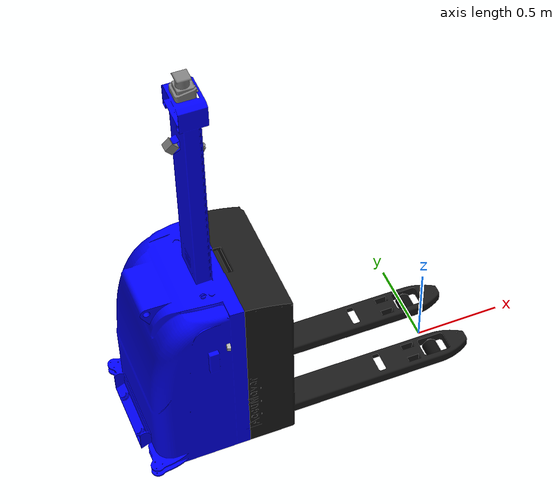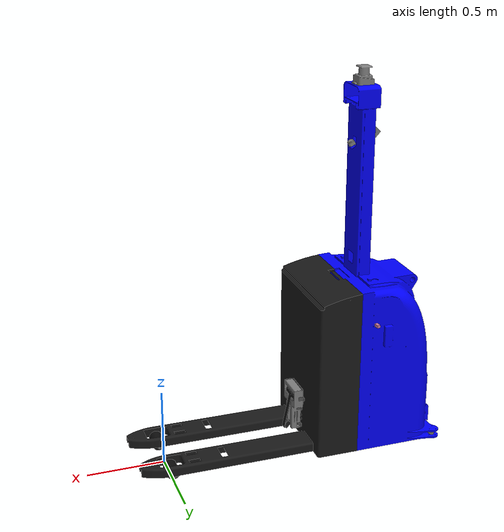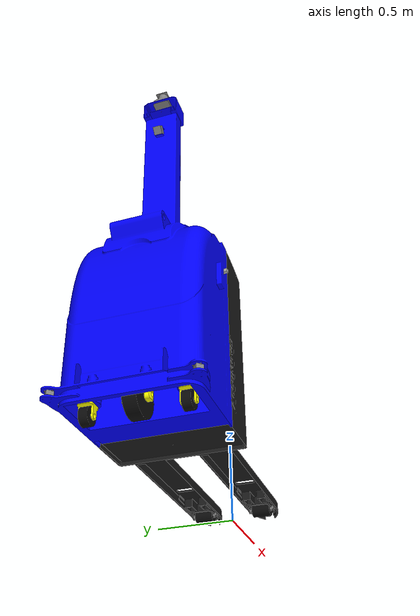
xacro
<?xml version="1.0"?>
<robot xmlns:xacro="http://www.ros.org/wiki/xacro" name="bopt_robot">

    <xacro:arg name="robot_name" default=""/>
    <xacro:arg name="robot_namespace" default=""/>
    <xacro:arg name="lidar_frame" default="top3dl_link"/>
    <xacro:arg name="robot_param_node" default="robot_state_publisher"/>

    <xacro:property name="robot_name" value="$(arg robot_name)"/>
    <xacro:include filename="materials.xacro"/>
    <xacro:include filename="ros2_control.xacro"/>
    <xacro:include filename="gazebo.xacro"/>

    <!-- ================================================================
         BASE LINKS
         ================================================================ -->

    <link name="base_footprint"/>

    <!-- Base chassis link -->
    <link name="base_link">
        <visual>
            <origin xyz="0 0 0" rpy="0 0 0"/>
            <geometry>
                <mesh filename="file:///home/jkw/bopt_ws/install/bopt_description/share/bopt_description/meshes/visual/Base.stl"/>
            </geometry>
            <material name="blue"/>
        </visual>
        <collision>
            <origin xyz="0.057 0 0.874" rpy="0 0 0"/>
            <geometry>
                <box size="0.583 0.821 2.315"/>
            </geometry>
        </collision>
        <inertial>
            <origin xyz="0 0 -0.2500" rpy="0 0 0"/>
            <mass value="200.0"/>
            <inertia ixx="3.46" ixy="0.0" ixz="0.0"
                     iyy="7.73" iyz="0.0"
                     izz="9.06"/>
        </inertial>
    </link>

    <joint name="base_footprint_joint" type="fixed">
        <parent link="base_footprint"/>
        <child link="base_link"/>
        <origin xyz="-1.542 0 0.337" rpy="0 0 0"/>
    </joint>

    <!-- ================================================================
         DRIVE WHEEL ASSEMBLY (Steering + Drive)
         ================================================================ -->

    <!-- Drive wheel steering assembly -->
    <link name="drive_wheel_Ass">
        <visual>
            <origin xyz="0 0 0" rpy="0 0 0"/>
            <geometry>
                <mesh filename="file:///home/jkw/bopt_ws/install/bopt_description/share/bopt_description/meshes/visual/drive_wheel_ass.stl"/>
            </geometry>
            <material name="yellow"/>
        </visual>
        <collision>
            <origin xyz="0 0 0" rpy="0 0 0"/>
            <geometry>
                <mesh filename="file:///home/jkw/bopt_ws/install/bopt_description/share/bopt_description/meshes/visual/drive_wheel_ass.stl"/>
            </geometry>
        </collision>
        <inertial>
            <origin xyz="0 0 0" rpy="0 0 0"/>
            <mass value="5.0"/>
            <inertia ixx="0.01" ixy="0.0" ixz="0.0"
                     iyy="0.01" iyz="0.0"
                     izz="0.01"/>
        </inertial>
    </link>

    <joint name="drive_wheel_Ass_joint" type="revolute">
        <parent link="base_link"/>
        <child link="drive_wheel_Ass"/>
        <origin xyz="0 0 -0.0010" rpy="0 0 0"/>
        <axis xyz="0 0 1"/>
        <limit lower="-3.14159" upper="3.14159" effort="1000" velocity="2"/>
        <dynamics damping="6" friction="0.1"/>
    </joint>

    <!--imu link -->
    <link name="imu_link">
        <inertial>
            <origin xyz="0.0 0.0 0.0"/>
            <mass value="0.01"/>
            <inertia ixx="0.02" iyy="0.02" izz="0.02"
                    ixy="0" ixz="0" iyz="0"/>
        </inertial>
    </link>

    <joint name="imu_joint" type="fixed">
        <parent link="base_link"/>
        <child link="imu_link"/>
        <origin xyz="0 0 0"/>
    </joint>

    <!-- Drive wheel -->
    <link name="drive_wheel">
        <visual>
            <origin xyz="0 0 0" rpy="0 0 0"/>
            <geometry>
                <mesh filename="file:///home/jkw/bopt_ws/install/bopt_description/share/bopt_description/meshes/visual/drive_wheel.stl"/>
            </geometry>
            <material name="rubber_black"/>
        </visual>
        <collision>
            <origin xyz="0 0 0" rpy="1.5708 0 0"/>
            <geometry>
                <cylinder radius="0.115" length="0.074"/>
            </geometry>
            <surface>
                <friction>
                    <ode>
                        <mu>5.0</mu>
                        <mu2>5.0</mu2>
                    </ode>
                </friction>
            </surface>
        </collision>
        <inertial>
            <origin xyz="0 0 0" rpy="0 0 0"/>
            <mass value="10.0"/>
            <inertia ixx="0.02" ixy="0.0" ixz="0.0"
                     iyy="0.02" iyz="0.0"
                     izz="0.02"/>
        </inertial>
    </link>

    <joint name="drive_wheel_joint" type="continuous">
        <parent link="drive_wheel_Ass"/>
        <child link="drive_wheel"/>
        <origin xyz="0 0 -0.21916" rpy="0 0 0"/>
        <axis xyz="0 1 0"/>
        <dynamics damping="10" friction="6"/>
    </joint>

    <!-- ================================================================
         CASTER WHEEL ASSEMBLIES
         ================================================================ -->

    <!-- Caster assembly - right -->
    <link name="caster_wheel_ass_right">
        <visual>
            <origin xyz="0 0 0" rpy="0 0 0"/>
            <geometry>
                <mesh filename="file:///home/jkw/bopt_ws/install/bopt_description/share/bopt_description/meshes/visual/caster_wheel_ass.stl"/>
            </geometry>
            <material name="yellow"/>
        </visual>
        <collision>
            <origin xyz="0 0 0" rpy="0 0 0"/>
            <geometry>
                <mesh filename="file:///home/jkw/bopt_ws/install/bopt_description/share/bopt_description/meshes/visual/caster_wheel_ass.stl"/>
            </geometry>
        </collision>
        <inertial>
            <origin xyz="0 0 0" rpy="0 0 0"/>
            <mass value="2.0"/>
            <inertia ixx="0.02" ixy="0.0" ixz="0.0"
                     iyy="0.02" iyz="0.0"
                     izz="0.02"/>
        </inertial>
    </link>

    <joint name="caster_wheel_ass_joint_right" type="continuous">
        <parent link="base_link"/>
        <child link="caster_wheel_ass_right"/>
        <origin xyz="0 -0.26066 -0.205" rpy="0 0 0"/>
        <axis xyz="0 0 1"/>
        <dynamics damping="1" friction="0.01"/>
    </joint>

    <!-- Caster assembly - left -->
    <link name="caster_wheel_ass_left">
        <visual>
            <origin xyz="0 0 0" rpy="0 0 0"/>
            <geometry>
                <mesh filename="file:///home/jkw/bopt_ws/install/bopt_description/share/bopt_description/meshes/visual/caster_wheel_ass.stl"/>
            </geometry>
            <material name="yellow"/>
        </visual>
        <collision>
            <origin xyz="0 0 0" rpy="0 0 0"/>
            <geometry>
                <mesh filename="file:///home/jkw/bopt_ws/install/bopt_description/share/bopt_description/meshes/visual/caster_wheel_ass.stl"/>
            </geometry>
        </collision>
        <inertial>
            <origin xyz="0 0 0" rpy="0 0 0"/>
            <mass value="2.0"/>
            <inertia ixx="0.02" ixy="0.0" ixz="0.0"
                     iyy="0.02" iyz="0.0"
                     izz="0.02"/>
        </inertial>
    </link>

    <joint name="caster_wheel_ass_joint_left" type="continuous">
        <parent link="base_link"/>
        <child link="caster_wheel_ass_left"/>
        <origin xyz="0 0.26066 -0.205" rpy="0 0 0"/>
        <axis xyz="0 0 1"/>
        <dynamics damping="1" friction="0.01"/>
    </joint>

    <!-- Caster wheel - right -->
    <link name="caster_wheel_right">
        <visual>
            <origin xyz="0 0 0" rpy="0 0 0"/>
            <geometry>
                <mesh filename="file:///home/jkw/bopt_ws/install/bopt_description/share/bopt_description/meshes/visual/casster_wheel.stl"/>
            </geometry>
            <material name="rubber_black"/>
        </visual>
        <collision>
            <origin xyz="0 0 0" rpy="1.5708 0 0"/>
            <geometry>
                <cylinder radius="0.050" length="0.055"/>
            </geometry>
        </collision>
        <inertial>
            <origin xyz="0 0 0" rpy="0 0 0"/>
            <mass value="1.8"/>
            <inertia ixx="0.02" ixy="0.0" ixz="0.0"
                     iyy="0.02" iyz="0.0"
                     izz="0.02"/>
        </inertial>
    </link>

    <joint name="caster_wheel_joint_right" type="continuous">
        <parent link="caster_wheel_ass_right"/>
        <child link="caster_wheel_right"/>
        <origin xyz="0 0 -0.078" rpy="0 0 0"/>
        <axis xyz="0 1 0"/>
        <dynamics damping="10" friction="6"/>
    </joint>

    <!-- Caster wheel - left -->
    <link name="caster_wheel_left">
        <visual>
            <origin xyz="0 0 0" rpy="0 0 0"/>
            <geometry>
                <mesh filename="file:///home/jkw/bopt_ws/install/bopt_description/share/bopt_description/meshes/visual/casster_wheel.stl"/>
            </geometry>
            <material name="rubber_black"/>
        </visual>
        <collision>
            <origin xyz="0 0 0" rpy="1.5708 0 0"/>
            <geometry>
                <cylinder radius="0.050" length="0.055"/>
            </geometry>
        </collision>
        <inertial>
            <origin xyz="0 0 0" rpy="0 0 0"/>
            <mass value="1.8"/>
            <inertia ixx="0.02" ixy="0.0" ixz="0.0"
                     iyy="0.02" iyz="0.0"
                     izz="0.02"/>
        </inertial>
    </link>

    <joint name="caster_wheel_joint_left" type="continuous">
        <parent link="caster_wheel_ass_left"/>
        <child link="caster_wheel_left"/>
        <origin xyz="0 0 -0.078" rpy="0 0 0"/>
        <axis xyz="0 1 0"/>
        <dynamics damping="10" friction="6"/>
    </joint>

    <!-- ================================================================
         BOTTOM LIDAR SENSORS (rear corners)
         ================================================================ -->

    <!-- Bottom lidar - left rear -->
    <link name="LLt">
        <visual>
            <origin xyz="0 0 -0.009" rpy="0 0 2.356"/>
            <geometry>
                <mesh filename="file:///home/jkw/bopt_ws/install/bopt_description/share/bopt_description/meshes/visual/lidar19.stl"/>
            </geometry>
            <material name="gray"/>
        </visual>
        <collision>
            <origin xyz="0 0 0" rpy="0 0 0"/>
            <geometry>
                <box size="0.05 0.05 0.05"/>
            </geometry>
        </collision>
        <inertial>
            <origin xyz="0 0 0" rpy="0 0 0"/>
            <mass value="0.2"/>
            <inertia ixx="0.01" ixy="0.0" ixz="0.0"
                     iyy="0.01" iyz="0.0"
                     izz="0.01"/>
        </inertial>
    </link>

    <joint name="LLt_joint" type="fixed">
        <parent link="base_link"/>
        <child link="LLt"/>
        <origin xyz="-0.1854 0.3704 -0.230" rpy="3.14 0 0"/>
    </joint>

    <!-- Bottom lidar - right rear -->
    <link name="LRt">
        <visual>
            <origin xyz="0 0 -0.009" rpy="0 0 0.784"/>
            <geometry>
                <mesh filename="file:///home/jkw/bopt_ws/install/bopt_description/share/bopt_description/meshes/visual/lidar19.stl"/>
            </geometry>
            <material name="gray"/>
        </visual>
        <collision>
            <origin xyz="0 0 0" rpy="0 0 0"/>
            <geometry>
                <box size="0.05 0.05 0.05"/>
            </geometry>
        </collision>
        <inertial>
            <origin xyz="0 0 0" rpy="0 0 0"/>
            <mass value="0.2"/>
            <inertia ixx="0.01" ixy="0.0" ixz="0.0"
                     iyy="0.01" iyz="0.0"
                     izz="0.01"/>
        </inertial>
    </link>

    <joint name="LRt_joint" type="fixed">
        <parent link="base_link"/>
        <child link="LRt"/>
        <origin xyz="-0.1854 -0.3704 -0.230" rpy="3.14 0 0"/>
    </joint>

    <!-- ================================================================
         TOP 2D LIDAR SENSORS
         ================================================================ -->

    <!-- Top 2D lidar - back -->

    <!--Depth camera instead of back lidar -->

    <link name="depth_camera_back">

        <visual>
            <origin xyz="0 0 0" rpy="0 0 0"/>
            <geometry>
                <box size="0.05 0.05 0.05"/>
            </geometry>
            <material name="gray"/>
        </visual>

        <collision>
            <origin xyz="0 0 0" rpy="0 0 0"/>
            <geometry>
                <box size="0.01 0.01 0.01"/>
            </geometry>
        </collision>

        <inertial>
            <origin xyz="0 0 0" rpy="0 0 0"/>
            <mass value="0.1"/>
            <inertia
                ixx="0.01"
                ixy="0.0"
                ixz="0.0"
                iyy="0.01"
                iyz="0.0"
                izz="0.01"/>
        </inertial>

    </link>

    <joint name="depth_camera_joint_back" type="fixed">

        <parent link="base_link"/>
        <child link="depth_camera_back"/>

        <origin
            xyz="0.145 -0.0063 1.730"
            rpy="0 0.724835238353245 3.141592653589793"/>

    </joint>

    <link name="depth_camera_back_optical"/>

    <joint name="depth_camera_optical_joint_back" type="fixed">

        <parent link="depth_camera_back"/>
        <child link="depth_camera_back_optical"/>

        <origin
            xyz="0 0 0"
            rpy="-1.5708 0 -1.5708"/>

    </joint>

    <!-- Top 2D lidar - front -->
    <link name="toplidar_front">
        <visual>
            <origin xyz="0 0 -0.003" rpy="0 0 -1.5708"/>
            <geometry>
                <mesh filename="file:///home/jkw/bopt_ws/install/bopt_description/share/bopt_description/meshes/visual/lidar19.stl"/>
            </geometry>
            <material name="gray"/>
        </visual>
        <collision>
            <origin xyz="0 0 0" rpy="0 0 0"/>
            <geometry>
                <box size="0.05 0.05 0.05"/>
            </geometry>
        </collision>
        <inertial>
            <origin xyz="0 0 0" rpy="0 0 0"/>
            <mass value="0.2"/>
            <inertia ixx="0.01" ixy="0.0" ixz="0.0"
                     iyy="0.01" iyz="0.0"
                     izz="0.01"/>
        </inertial>
    </link>

    <joint name="toplidar_joint_front" type="fixed">
        <parent link="base_link"/>
        <child link="toplidar_front"/>
        <origin xyz="0.288 -0.0063 1.66" rpy="0 0.47 0"/>
    </joint>

    <!-- ================================================================
         TOP 3D LIDAR
         ================================================================ -->

    <link name="top3dl_link">
        <visual>
            <origin xyz="0 0 0" rpy="0 0 0"/>
            <geometry>
                <mesh filename="file:///home/jkw/bopt_ws/install/bopt_description/share/bopt_description/meshes/visual/3Dlidar.stl"/>
            </geometry>
            <material name="gray"/>
        </visual>
        <collision>
            <origin xyz="0 0 0" rpy="0 0 0"/>
            <geometry>
                <box size="0.1 0.1 0.1"/>
            </geometry>
        </collision>
        <inertial>
            <origin xyz="0 0 0" rpy="0 0 0"/>
            <mass value="0.5"/>
            <inertia ixx="0.01" ixy="0.0" ixz="0.0"
                     iyy="0.01" iyz="0.0"
                     izz="0.01"/>
        </inertial>
    </link>

    <joint name="top3dl_joint" type="fixed">
        <parent link="base_link"/>
        <child link="top3dl_link"/>
        <origin xyz="0.2356 0.00 2.0731" rpy="0 0 0"/>
    </joint>

    <!--front safety lidar-->

    <link name="front_lidar_frame_left">
        <visual>
            <origin xyz="0 0 0" rpy="0 0 -1.5708"/>
            <geometry>
                <mesh filename="file:///home/jkw/bopt_ws/install/bopt_description/share/bopt_description/meshes/visual/lidar19.stl"/>
            </geometry>
            <material name="gray"/>
        </visual>
        <collision>
            <origin xyz="0 0 0" rpy="0 0 0"/>
            <geometry>
                <box size="0.05 0.05 0.05"/>
            </geometry>
        </collision>
        <inertial>
            <origin xyz="0 0 0" rpy="0 0 0"/>
            <mass value="0.5"/>
            <inertia ixx="0.001" ixy="0.0" ixz="0.0" iyy="0.001" iyz="0.0" izz="0.001"/>
        </inertial>
    </link>

    <joint name="front_lidar_frame_left_joint" type="fixed">
        <parent link="front_lift_link"/>
        <child link="front_lidar_frame_left"/>
        <origin xyz="1.233 0.180 0.025" rpy="3.14 0 0"/>
    </joint>

    <link name="front_lidar_frame_right">
        <visual>
            <origin xyz="0 0 0" rpy="0 0 -1.5708"/>
            <geometry>
                <mesh filename="file:///home/jkw/bopt_ws/install/bopt_description/share/bopt_description/meshes/visual/lidar19.stl"/>
            </geometry>
            <material name="gray"/>
        </visual>
        <collision>
            <origin xyz="0 0 0" rpy="0 0 0"/>
            <geometry>
                <box size="0.05 0.05 0.05"/>
            </geometry>
        </collision>
        <inertial>
            <origin xyz="0 0 0" rpy="0 0 0"/>
            <mass value="0.5"/>
            <inertia ixx="0.001" ixy="0.0" ixz="0.0" iyy="0.001" iyz="0.0" izz="0.001"/>
        </inertial>
    </link>

    <joint name="front_lidar_frame_right_joint" type="fixed">
        <parent link="front_lift_link"/>
        <child link="front_lidar_frame_right"/>
        <origin xyz="1.233 -0.190 0.025" rpy="3.14 0 0"/>
    </joint>

    <!-- ================================================================
         FRONT LIFT MECHANISM
         ================================================================ -->

    <link name="front_lift_link">
        <visual>
            <origin xyz="0 0 0" rpy="0 0 0"/>
            <geometry>
                <mesh filename="file:///home/jkw/bopt_ws/install/bopt_description/share/bopt_description/meshes/visual/front.stl"/>
            </geometry>
            <material name="black"/>
        </visual>
        <collision>
            <origin xyz="0 0 0" rpy="0 0 0"/>
            <geometry>
                <mesh filename="file:///home/jkw/bopt_ws/install/bopt_description/share/bopt_description/meshes/visual/front.stl"/>
            </geometry>
        </collision>
        <inertial>
            <origin xyz="0.177 0 0" rpy="0 0 0"/>
            <mass value="125"/>
            <inertia ixx="1.0" ixy="0.0" ixz="0.0"
                     iyy="2.0" iyz="0.0"
                     izz="2.0"/>
        </inertial>
    </link>

    <joint name="front_lift_joint" type="prismatic">
        <parent link="base_link"/>
        <child link="front_lift_link"/>
        <origin xyz="0.477 0 -0.265" rpy="0 0 0"/>
        <axis xyz="0 0 1"/>
        <limit lower="0" upper="0.095" effort="30000" velocity="0.05"/>
        <dynamics damping="125" friction="15"/>
    </joint>

    <!-- ================================================================
         FRONT WHEELS
         ================================================================ -->

    <!-- Front wheel shaft - left -->
    <link name="front_wheel_shaft_left">
        <visual>
            <origin xyz="0 0 0" rpy="1.5708 0 0"/>
            <geometry>
                <mesh filename="file:///home/jkw/bopt_ws/install/bopt_description/share/bopt_description/meshes/visual/front_wheel_shaft.stl"/>
            </geometry>
            <material name="gray"/>
        </visual>
        <collision>
            <origin xyz="0 0 0" rpy="1.5708 0 0"/>
            <geometry>
                <mesh filename="file:///home/jkw/bopt_ws/install/bopt_description/share/bopt_description/meshes/visual/front_wheel_shaft.stl"/>
            </geometry>
        </collision>
        <inertial>
            <origin xyz="0.148 0 0" rpy="0 0 0"/>
            <mass value="1"/>
            <inertia ixx="0.01" ixy="0.0" ixz="0.0"
                     iyy="0.01" iyz="0.0"
                     izz="0.01"/>
        </inertial>
    </link>

    <joint name="front_wheel_shaft_left_joint" type="revolute">
        <parent link="front_lift_link"/>
        <child link="front_wheel_shaft_left"/>

        <origin xyz="0.9190 0.2485 0.0196"
            rpy="0 0.259 0"/>

        <axis xyz="0 1 0"/>

        <limit lower="0"
            upper="0.785"
            effort="500000"
            velocity="1"/>

        <dynamics damping="125.0"
                friction="0.8"/>

        <mimic joint="front_lift_joint"
               multiplier="7.725"
               offset="0"/>
    </joint>

    <!-- Front wheel shaft - right -->
    <link name="front_wheel_shaft_right">
        <visual>
            <origin xyz="0 0 0" rpy="1.5708 0 0"/>
            <geometry>
                <mesh filename="file:///home/jkw/bopt_ws/install/bopt_description/share/bopt_description/meshes/visual/front_wheel_shaft.stl"/>
            </geometry>
            <material name="gray"/>
        </visual>
        <collision>
            <origin xyz="0 0 0" rpy="1.5708 0 0"/>
            <geometry>
                <mesh filename="file:///home/jkw/bopt_ws/install/bopt_description/share/bopt_description/meshes/visual/front_wheel_shaft.stl"/>
            </geometry>
        </collision>
        <inertial>
            <origin xyz="0.148 0 0" rpy="0 0 0"/>
            <mass value="1"/>
            <inertia ixx="0.01" ixy="0.0" ixz="0.0"
                     iyy="0.01" iyz="0.0"
                     izz="0.01"/>
        </inertial>
    </link>

    <joint name="front_wheel_shaft_right_joint" type="revolute">
        <parent link="front_lift_link"/>
        <child link="front_wheel_shaft_right"/>

        <origin xyz="0.9190 -0.1205 0.0196"
            rpy="0 0.259 0"/>

        <axis xyz="0 1 0"/>

        <limit lower="0"
            upper="0.785"
            effort="500000"
            velocity="1"/>

        <dynamics damping="125.0"
                friction="0.8"/>

        <mimic joint="front_lift_joint"
            multiplier="7.725"
            offset="0"/>
    </joint>
    <!-- Front wheel - right -->
    <link name="front_wheel_right">
        <visual>
            <origin xyz="0 0 0" rpy="0 0 0"/>
            <geometry>
                <mesh filename="file:///home/jkw/bopt_ws/install/bopt_description/share/bopt_description/meshes/visual/front_wheel.stl"/>
            </geometry>
            <material name="rubber_black"/>
        </visual>
        <collision>
            <origin xyz="0 0 0" rpy="1.5708 0 0"/>
            <geometry>
                <cylinder radius="0.0425" length="0.110"/>
            </geometry>
        </collision>
        <inertial>
            <origin xyz="0 0 0" rpy="0 0 0"/>
            <mass value="5.0"/>
            <inertia ixx="0.01" ixy="0.0" ixz="0.0"
                     iyy="0.01" iyz="0.0"
                     izz="0.01"/>
        </inertial>
    </link>

    <joint name="front_wheel_right_joint" type="continuous">
        <parent link="front_wheel_shaft_right"/>
        <child link="front_wheel_right"/>
        <origin xyz="0.1488 -0.067 -0.0025435" rpy="0 -0.259 0"/>
        <axis xyz="0 1 0"/>
        <dynamics damping="10" friction="6"/>
    </joint>

    <!-- Front wheel - left -->
    <link name="front_wheel_left">
        <visual>
            <origin xyz="0 0 0" rpy="0 0 0"/>
            <geometry>
                <mesh filename="file:///home/jkw/bopt_ws/install/bopt_description/share/bopt_description/meshes/visual/front_wheel.stl"/>
            </geometry>
            <material name="rubber_black"/>
        </visual>
        <collision>
            <origin xyz="0 0 0" rpy="1.5708 0 0"/>
            <geometry>
               <cylinder radius="0.0425" length="0.110"/>
            </geometry>
        </collision>
        <inertial>
            <origin xyz="0 0 0" rpy="0 0 0"/>
            <mass value="5.0"/>
            <inertia ixx="0.01" ixy="0.0" ixz="0.0"
                     iyy="0.01" iyz="0.0"
                     izz="0.01"/>
        </inertial>
    </link>

    <joint name="front_wheel_left_joint" type="continuous">
        <parent link="front_wheel_shaft_left"/>
        <child link="front_wheel_left"/>
        <origin xyz="0.1488 -0.067 -0.0025435" rpy="0 -0.259 0"/>
        <axis xyz="0 1 0"/>
        <dynamics damping="10" friction="6"/>
    </joint>

    <!-- ultrasonic sensor for base left and right -->
    <link name="ultrasonic_link_left">
        <visual>
            <geometry>
                <box size="0.02 0.05 0.02"/>
            </geometry>
        </visual>
        <collision>
            <geometry>
                <box size="0.02 0.05 0.02"/>
            </geometry>
        </collision>
    </link>

    <joint name="ultrasonic_joint_left" type="fixed">
        <parent link="base_link"/>
        <child link="ultrasonic_link_left"/>
        <origin xyz="0.250 0.3704 0.600" rpy="0 0.0872665 0.1872665"/>
    </joint>

    <link name="ultrasonic_link_right">
        <visual>
            <geometry>
                <box size="0.02 0.05 0.02"/>
            </geometry>
        </visual>
        <collision>
            <geometry>
                <box size="0.02 0.05 0.02"/>
            </geometry>
        </collision>
    </link>

    <joint name="ultrasonic_joint_right" type="fixed">
        <parent link="base_link"/>
        <child link="ultrasonic_link_right"/>
        <origin xyz="0.250 -0.3704 0.600" rpy="0 0.0872665 -0.1872665"/>
    </joint>

    <!--Limit switch-->

    <link name="limit_switch_link">
        <visual>
            <geometry>
                <mesh filename="file:///home/jkw/bopt_ws/install/bopt_description/share/bopt_description/meshes/visual/limitswitch_frame.stl" scale="0.85 0.85 0.85"/>
            </geometry>
            <material name="gray"/>
        </visual>
        <collision>
            <geometry>
                <mesh filename="file:///home/jkw/bopt_ws/install/bopt_description/share/bopt_description/meshes/visual/limitswitch_frame.stl" scale="0.85 0.85 0.85"/>
            </geometry>
        </collision>
    </link>

    <joint name="limit_switch_joint" type="fixed">
        <parent link="front_lift_link"/>
        <child link="limit_switch_link"/>
        <origin xyz="0.158 0 0.180" rpy="0 0 0"/>
    </joint>

    <link name="limit_switch_bar">
        <visual>
            <geometry>
                <mesh filename="file:///home/jkw/bopt_ws/install/bopt_description/share/bopt_description/meshes/visual/limitswitch_bar.stl" scale="0.85 0.85 0.85"/>
            </geometry>
            <material name="black"/>
        </visual>
        <collision>
            <origin xyz="0 0 -0.12" rpy="0 0 0"/>
            <geometry>
                <box size="0.02 0.04 0.25"/>
            </geometry>
        </collision>
        <inertial>
            <origin xyz="0 0 0" rpy="0 0 0"/>
            <mass value="0.1"/>
            <inertia ixx="0.001" ixy="0.0" ixz="0.0" iyy="0.001" iyz="0.0" izz="0.001"/>
        </inertial>
    </link>

    <joint name="limit_switch_bar_joint" type="revolute">
        <parent link="limit_switch_link"/>
        <child link="limit_switch_bar"/>

        <origin xyz="0.040 0 0.09" rpy="0 -0.200 0"/>

        <axis xyz="0 1 0"/>

        <limit
            lower="-0.02"
            upper="0.25"
            effort="20"
            velocity="5.0"/>

        <dynamics
            damping="0.02"
            friction="0.0"/>
    </joint>

    <xacro:ros2_control robot_name="$(arg robot_name)"/>

</robot>

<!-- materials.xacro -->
<robot xmlns:xacro="http://www.ros.org/wiki/xacro">

    <material name="black">
        <color rgba="0.1 0.1 0.1 1.0"/>
    </material>
    <material name="rubber_black">
        <color rgba="0.05 0.05 0.05 1.0"/>
    </material>

    <material name="white">
        <color rgba="1.0 1.0 1.0 1.0"/>
    </material>

    <material name="gray">
        <color rgba="0.5 0.5 0.5 1.0"/>
    </material>

    <material name="red">
        <color rgba="1.0 0.0 0.0 1.0"/>
    </material>

    <material name="green">
        <color rgba="0.0 1.0 0.0 1.0"/>
    </material>

    <material name="blue">
        <color rgba="0.0 0.0 1.0 1.0"/>
    </material>

    <material name="yellow">
        <color rgba="1.0 1.0 0.0 1.0"/>
    </material>

</robot>
